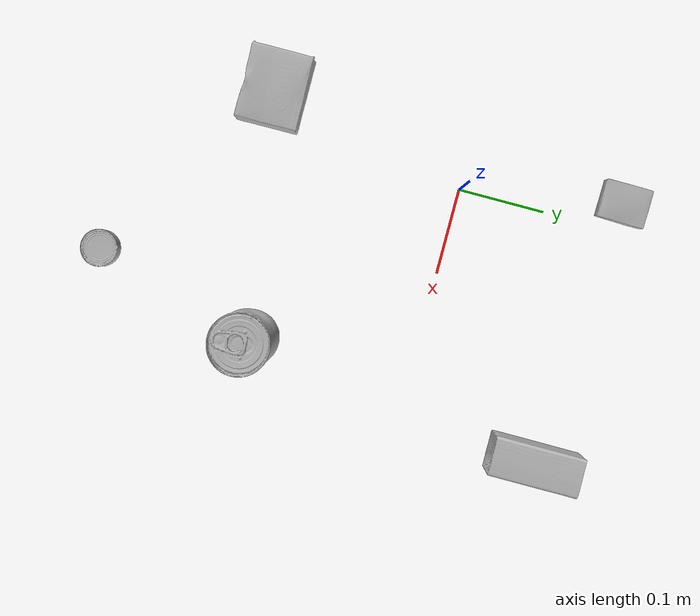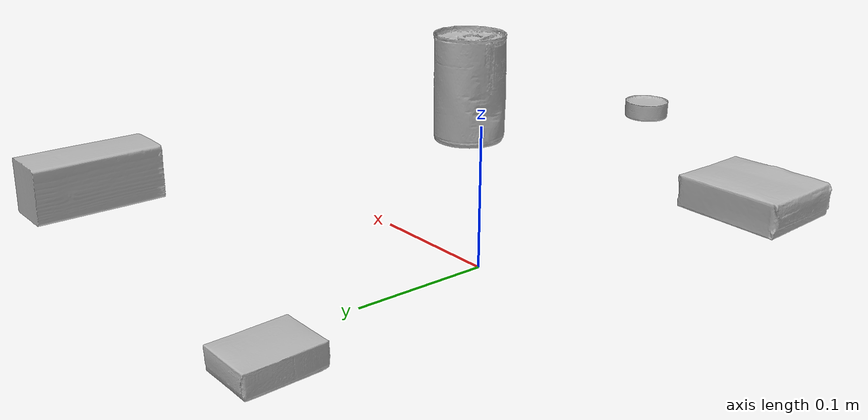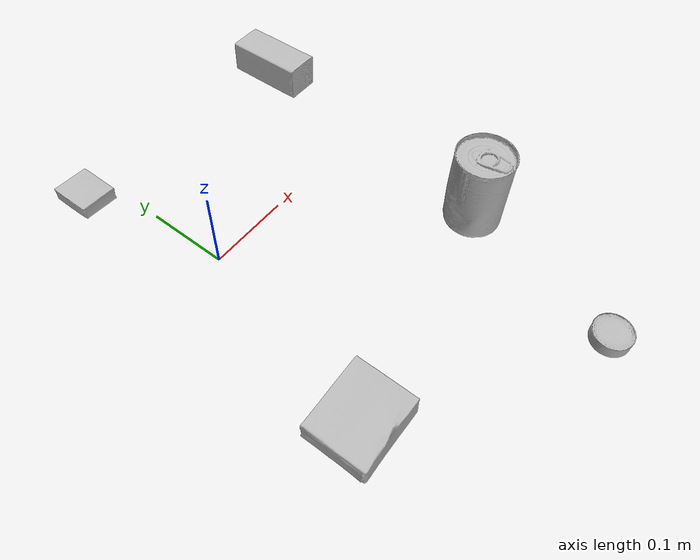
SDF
<sdf version="1.4">
  <world name="default">
    <light name="light1" type="point">
      <pose>0 0 1 0 0 0</pose>
      <diffuse>3 3 3 1</diffuse>
      <specular>3 3 3 1</specular>
    </light>
    <light name="light2" type="point">
      <pose>0 0.5 2 0 0 0</pose>
      <diffuse>1 1 1 1</diffuse>
      <specular>1 1 1 1</specular>
    </light>
    <light name="light3" type="point">
      <pose>0 0.5 2 0 0 0</pose>
      <diffuse>3 3 3 1</diffuse>
      <specular>3 3 3 1</specular>
    </light>
    <scene>
      <ambient>0.7 0.7 0.7</ambient>
    </scene>
    <model name="box1">
      <link name="link_box1">
        <collision name="default">
          <geometry>
            <mesh>
              <uri>model://pudding_box/collision_meshes/collision.obj</uri>
              <scale>0.5 0.5 0.5</scale>
            </mesh>
          </geometry>
          <surface>
            <friction>
              <ode>
                <mu>0.5</mu>
                <mu2>0.5</mu2>
              </ode>
            </friction>
          <contact>
        <ode>
            <max_vel>0</max_vel>
            <min_depth>0.0001</min_depth>
            <kp>1e8</kp>
        </ode>
    </contact></surface>
        </collision>
        <visual name="default">
          <geometry>
            <mesh>
              <uri>model://pudding_box/visual_meshes/visual.dae</uri>
              <scale>0.5 0.5 0.5</scale>
            </mesh>
          </geometry>
        </visual>
        <inertial>
          <mass>0.049221161752939224</mass>
          <pose>0.00024474109522998333 0.00040339428232982755 -0.0002594413817860186 0.005213101772454675 -0.006603800120423707 0.020079827019105066</pose>
          <inertia>
            <ixx>1.3910499e-05</ixx>
            <iyy>9.3590825e-06</iyy>
            <izz>2.0542482e-05</izz>
            <ixy>0</ixy>
            <ixz>0</ixz>
            <iyz>0</iyz>
          </inertia>
        </inertial>
      </link>
      <pose>-0.031456638127565384 0.1844313144683838 0.009862905368208885 0.022348554792734655 -0.011391697310312568 3.1292235548322793</pose>
    </model>
    <model name="box2">
      <link name="link_box2">
        <collision name="default">
          <geometry>
            <mesh>
              <uri>model://gelatin_box/collision_meshes/collision.obj</uri>
              <scale>1.0 1.0 1.0</scale>
            </mesh>
          </geometry>
          <surface>
            <friction>
              <ode>
                <mu>0.5</mu>
                <mu2>0.5</mu2>
              </ode>
            </friction>
          <contact>
        <ode>
            <max_vel>0</max_vel>
            <min_depth>0.0001</min_depth>
            <kp>1e8</kp>
        </ode>
    </contact></surface>
        </collision>
        <visual name="default">
          <geometry>
            <mesh>
              <uri>model://gelatin_box/visual_meshes/visual.dae</uri>
              <scale>1.0 1.0 1.0</scale>
            </mesh>
          </geometry>
        </visual>
        <inertial>
          <mass>0.1975366622209549</mass>
          <pose>0.000431961816502735 0.00011156871187267825 -0.00036403207923285663 -0.0010503719683328595 -0.0047558182256164224 0.016440557608480007</pose>
          <inertia>
            <ixx>0.00013944478</ixx>
            <iyy>9.960467e-05</iyy>
            <izz>0.00021226601</izz>
            <ixy>0</ixy>
            <ixz>0</ixz>
            <iyz>0</iyz>
          </inertia>
        </inertial>
      </link>
      <pose>-0.055180978029966354 -0.2322995364665985 0.015168312937021255 0.005597385305209194 -0.00730450049946452 -1.570677633345322</pose>
    </model>
    <model name="box3">
      <link name="link_box3">
        <collision name="default">
          <geometry>
            <mesh>
              <uri>model://wood_block/collision_meshes/collision.obj</uri>
              <scale>0.5 0.5 0.5</scale>
            </mesh>
          </geometry>
          <surface>
            <friction>
              <ode>
                <mu>0.5</mu>
                <mu2>0.5</mu2>
              </ode>
            </friction>
          <contact>
        <ode>
            <max_vel>0</max_vel>
            <min_depth>0.0001</min_depth>
            <kp>1e8</kp>
        </ode>
    </contact></surface>
        </collision>
        <visual name="default">
          <geometry>
            <mesh>
              <uri>model://wood_block/visual_meshes/visual.dae</uri>
              <scale>0.5 0.5 0.5</scale>
            </mesh>
          </geometry>
        </visual>
        <inertial>
          <mass>0.2799808979034424</mass>
          <pose>-2.9066577553749084e-06 -0.000285404734313488 0.00013204291462898254 -0.05220811074253327 -0.005192695744074178 -0.0068613776969266935</pose>
          <inertia>
            <ixx>9.3664195e-05</ixx>
            <iyy>0.0002958853</iyy>
            <izz>0.00029477844</izz>
            <ixy>0</ixy>
            <ixz>0</ixz>
            <iyz>0</iyz>
          </inertia>
        </inertial>
      </link>
      <pose>0.2784114480018616 0.15860337018966675 0.022629262879490852 -0.005208510939321444 0.0057187633086712665 -1.567185266005152</pose>
    </model>
    <model name="can1">
      <link name="link_can1">
        <collision name="default">
          <geometry>
            <mesh>
              <uri>model://tomato_soup_can/collision_meshes/collision.obj</uri>
              <scale>1.0 1.0 1.0</scale>
            </mesh>
          </geometry>
          <surface>
            <friction>
              <ode>
                <mu>0.5</mu>
                <mu2>0.5</mu2>
              </ode>
            </friction>
          <contact>
        <ode>
            <max_vel>0</max_vel>
            <min_depth>0.0001</min_depth>
            <kp>1e8</kp>
        </ode>
    </contact></surface>
        </collision>
        <visual name="default">
          <geometry>
            <mesh>
              <uri>model://tomato_soup_can/visual_meshes/visual.dae</uri>
              <scale>1.0 1.0 1.0</scale>
            </mesh>
          </geometry>
        </visual>
        <inertial>
          <mass>0.35683923959732056</mass>
          <pose>0.00012652271834667772 0.00010805513738887385 -0.0017973982030525804 0.007020067402313596 0.00042299257688944205 -0.009903281374499336</pose>
          <inertia>
            <ixx>0.0003912439</ixx>
            <iyy>0.00038898273</iyy>
            <izz>0.00020277809</izz>
            <ixy>0</ixy>
            <ixz>0</ixz>
            <iyz>0</iyz>
          </inertia>
        </inertial>
      </link>
      <pose>0.22560609877109528 -0.18751926720142365 0.051273997873067856 -7.216502587695059e-07 -8.575122977967175e-07 -0.23062876806010799</pose>
    </model>
    <model name="can2">
      <link name="link_can2">
        <collision name="default">
          <geometry>
            <mesh>
              <uri>model://tuna_fish_can/collision_meshes/collision.obj</uri>
              <scale>0.5 0.5 0.5</scale>
            </mesh>
          </geometry>
          <surface>
            <friction>
              <ode>
                <mu>0.5</mu>
                <mu2>0.5</mu2>
              </ode>
            </friction>
          <contact>
        <ode>
            <max_vel>0</max_vel>
            <min_depth>0.0001</min_depth>
            <kp>1e8</kp>
        </ode>
    </contact></surface>
        </collision>
        <visual name="default">
          <geometry>
            <mesh>
              <uri>model://tuna_fish_can/visual_meshes/visual.dae</uri>
              <scale>0.5 0.5 0.5</scale>
            </mesh>
          </geometry>
        </visual>
        <inertial>
          <mass>0.011508840136229992</mass>
          <pose>-2.0362092982395552e-05 -7.256176559167216e-06 -0.0005269026150926948 -0.0017944756095399476 0.0001716207335623094 0.24053890436657652</pose>
          <inertia>
            <ixx>1.5560124e-06</ixx>
            <iyy>1.5495272e-06</iyy>
            <izz>2.662559e-06</izz>
            <ixy>0</ixy>
            <ixz>0</ixz>
            <iyz>0</iyz>
          </inertia>
        </inertial>
      </link>
      <pose>0.17096981406211853 -0.37827396392822266 0.008519995957612991 -1.7679358263668782e-10 2.1938501507521014e-09 -2.543859843394371</pose>
    </model>
  <physics type="ode">
      <max_contacts>50</max_contacts>
      <ode>
        <solver>
          <type>quick</type>
          <iters>75</iters>
        </solver>
        <constraints>
          <contact_max_correcting_vel>0</contact_max_correcting_vel>
          <contact_surface_layer>0</contact_surface_layer>
        </constraints>
      </ode>
    </physics></world>
</sdf>
